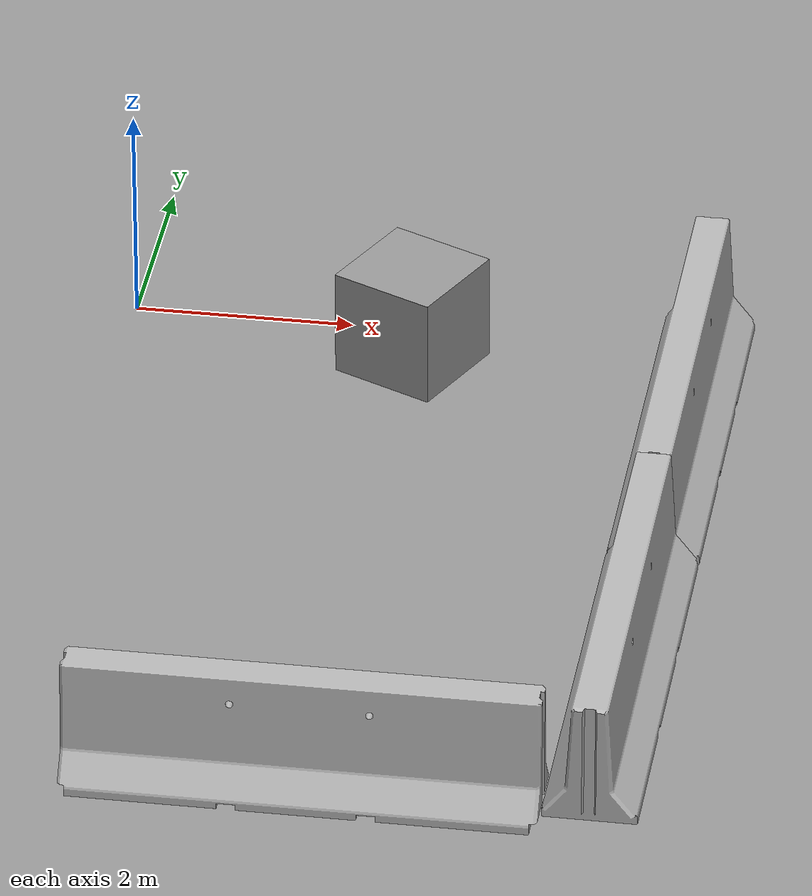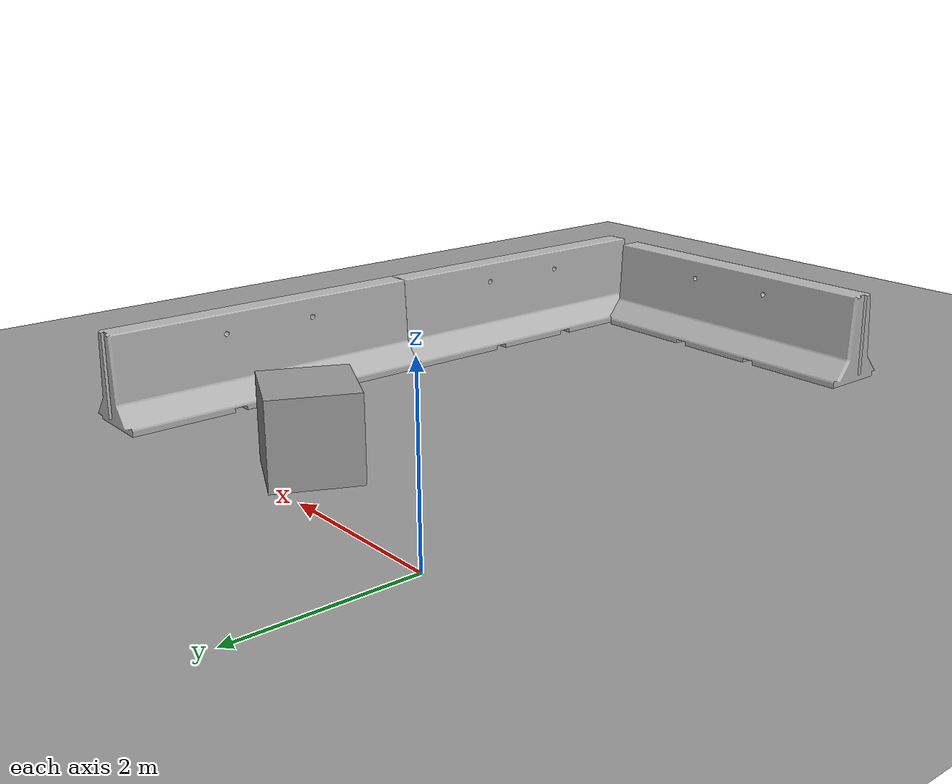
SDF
<sdf version="1.6">
 <world name="default">
  <model name="ground_plane_0">
   <static>1</static>
   <link name="link">
    <collision name="collision">
     <geometry><plane><normal>0 0 1</normal><size>100 100</size></plane></geometry>
     <surface><friction><ode><mu>100</mu><mu2>50</mu2></ode></friction></surface>
    </collision>
    <visual name="visual">
     <cast_shadows>0</cast_shadows>
     <geometry><plane><normal>0 0 1</normal><size>100 100</size></plane></geometry>
     <material>
      <script><uri>file://media/materials/scripts/gazebo.material</uri><name>Gazebo/Grey</name></script>
     </material>
    </visual>
    <velocity_decay><linear>0</linear><angular>0</angular></velocity_decay>
   </link>
   <pose>0.497681 0 0 0 -0 0</pose>
  </model>
  <model name="jersey_barrier_0">
   <static>1</static>
   <link name="link">
    <visual name="visual">
     <geometry>
      <mesh><uri>model://jersey_barrier/meshes/jersey_barrier.dae</uri><scale>1 1 1</scale></mesh>
     </geometry>
    </visual>
    <collision name="upright">
     <pose>0 0 0.5715 0 -0 0</pose>
     <geometry><box><size>4.06542 0.3063 1.143</size></box></geometry>
    </collision>
    <collision name="base">
     <pose>0 0 0.032258 0 -0 0</pose>
     <geometry><box><size>4.06542 0.8107 0.064516</size></box></geometry>
    </collision>
    <collision name="base2">
     <pose>0 0 0.1 0 -0 0</pose>
     <geometry><box><size>4.06542 0.65 0.1</size></box></geometry>
    </collision>
    <collision name="base3">
     <pose>0 0 0.2 0 -0 0</pose>
     <geometry><box><size>4.06542 0.5 0.1</size></box></geometry>
    </collision>
    <collision name="left-angle">
     <pose>0 -0.224 0.2401 0.9 -0 0</pose>
     <geometry><box><size>4.06542 0.5 0.064516</size></box></geometry>
    </collision>
    <collision name="right-angle">
     <pose>0 0.224 0.2401 -0.9 0 0</pose>
     <geometry><box><size>4.06542 0.5 0.064516</size></box></geometry>
    </collision>
   </link>
   <pose>2.71724 -7.40041 0 0 -0 0</pose>
  </model>
  <model name="jersey_barrier_3">
   <static>1</static>
   <link name="link">
    <visual name="visual">
     <geometry>
      <mesh><uri>model://jersey_barrier/meshes/jersey_barrier.dae</uri><scale>1 1 1</scale></mesh>
     </geometry>
    </visual>
    <collision name="upright">
     <pose>0 0 0.5715 0 -0 0</pose>
     <geometry><box><size>4.06542 0.3063 1.143</size></box></geometry>
    </collision>
    <collision name="base">
     <pose>0 0 0.032258 0 -0 0</pose>
     <geometry><box><size>4.06542 0.8107 0.064516</size></box></geometry>
    </collision>
    <collision name="base2">
     <pose>0 0 0.1 0 -0 0</pose>
     <geometry><box><size>4.06542 0.65 0.1</size></box></geometry>
    </collision>
    <collision name="base3">
     <pose>0 0 0.2 0 -0 0</pose>
     <geometry><box><size>4.06542 0.5 0.1</size></box></geometry>
    </collision>
    <collision name="left-angle">
     <pose>0 -0.224 0.2401 0.9 -0 0</pose>
     <geometry><box><size>4.06542 0.5 0.064516</size></box></geometry>
    </collision>
    <collision name="right-angle">
     <pose>0 0.224 0.2401 -0.9 0 0</pose>
     <geometry><box><size>4.06542 0.5 0.064516</size></box></geometry>
    </collision>
   </link>
   <pose>5.17027 -5.5501 0 0 -0 1.56433</pose>
  </model>
  <model name="jersey_barrier_3_clone">
   <static>1</static>
   <link name="link">
    <visual name="visual">
     <geometry>
      <mesh><uri>model://jersey_barrier/meshes/jersey_barrier.dae</uri><scale>1 1 1</scale></mesh>
     </geometry>
    </visual>
    <collision name="upright">
     <pose>0 0 0.5715 0 -0 0</pose>
     <geometry><box><size>4.06542 0.3063 1.143</size></box></geometry>
    </collision>
    <collision name="base">
     <pose>0 0 0.032258 0 -0 0</pose>
     <geometry><box><size>4.06542 0.8107 0.064516</size></box></geometry>
    </collision>
    <collision name="base2">
     <pose>0 0 0.1 0 -0 0</pose>
     <geometry><box><size>4.06542 0.65 0.1</size></box></geometry>
    </collision>
    <collision name="base3">
     <pose>0 0 0.2 0 -0 0</pose>
     <geometry><box><size>4.06542 0.5 0.1</size></box></geometry>
    </collision>
    <collision name="left-angle">
     <pose>0 -0.224 0.2401 0.9 -0 0</pose>
     <geometry><box><size>4.06542 0.5 0.064516</size></box></geometry>
    </collision>
    <collision name="right-angle">
     <pose>0 0.224 0.2401 -0.9 0 0</pose>
     <geometry><box><size>4.06542 0.5 0.064516</size></box></geometry>
    </collision>
   </link>
   <pose>5.19949 -1.52797 0 0 -0 1.56433</pose>
  </model>
  <model name="unit_box_0">
   <pose>2.62253 -0.540605 0.49967 0.00066 -0 -0.445056</pose>
   <link name="link">
    <inertial>
     <mass>1</mass>
     <inertia>
      <ixx>0.166667</ixx>
      <ixy>0</ixy>
      <ixz>0</ixz>
      <iyy>0.166667</iyy>
      <iyz>0</iyz>
      <izz>0.166667</izz>
     </inertia>
    </inertial>
    <collision name="collision"><geometry><box><size>1 1 1</size></box></geometry></collision>
    <visual name="visual">
     <geometry><box><size>1 1 1</size></box></geometry>
     <material>
      <script><name>Gazebo/Grey</name><uri>file://media/materials/scripts/gazebo.material</uri></script>
     </material>
    </visual>
   </link>
  </model>
 </world>
</sdf>
